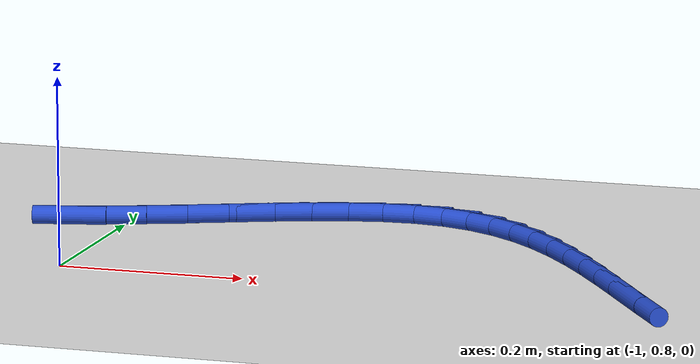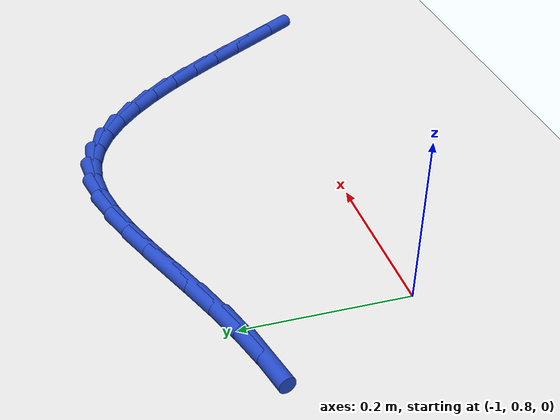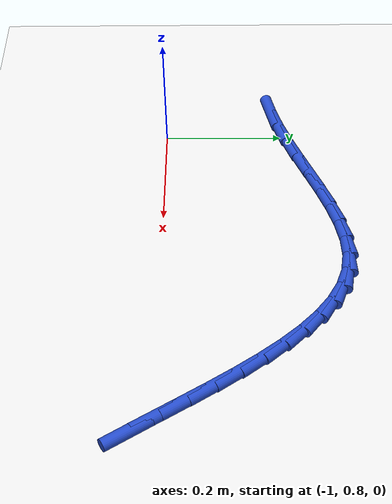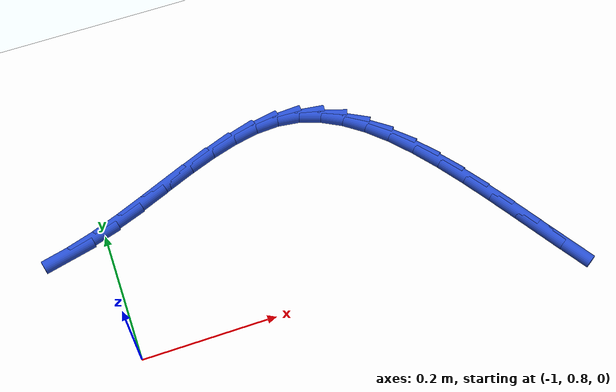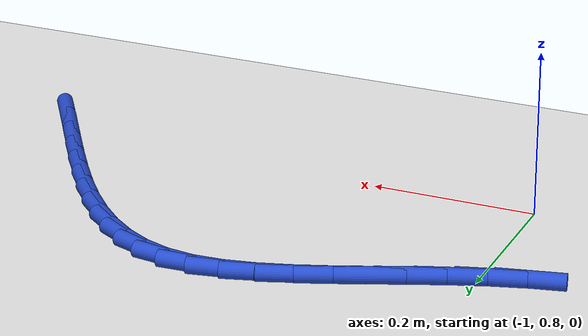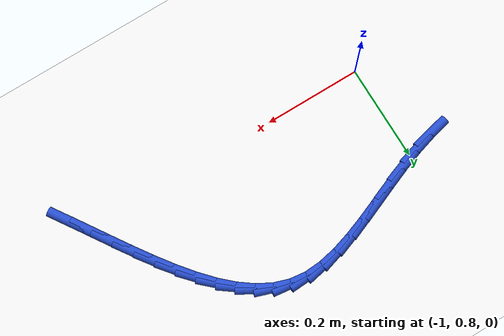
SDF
<sdf version="1.6">
 <world name="default">
  <model name="ground_plane">
   <static>1</static>
   <link name="link">
    <collision name="collision">
     <geometry><plane><normal>0 0 1</normal><size>100 100</size></plane></geometry>
     <surface><friction><ode><mu>100</mu><mu2>50</mu2></ode></friction></surface>
    </collision>
    <visual name="visual">
     <cast_shadows>0</cast_shadows>
     <geometry><plane><normal>0 0 1</normal><size>100 100</size></plane></geometry>
     <material>
      <script><uri>file://media/materials/scripts/gazebo.material</uri><name>Gazebo/WhiteGlow</name></script>
     </material>
    </visual>
   </link>
  </model>
  <model name="line">
   <link name="link_21">
    <pose>-0.36399305997773446 0.7625488888420463 0.01 0 1.57 -0.9926076525637345</pose>
    <collision name="collision">
     <geometry><cylinder><radius>0.01</radius><length>0.08</length></cylinder></geometry>
    </collision>
    <visual name="visual">
     <material>
      <script><name>Gazebo/Blue</name><uri>file://media/materials/scripts/gazebo.material</uri></script>
     </material>
     <geometry><cylinder><radius>0.01</radius><length>0.08</length></cylinder></geometry>
    </visual>
   </link>
   <link name="link_22">
    <pose>-0.3896115639665261 0.8018059892512244 0.01 0 1.57 -0.9981308526406184</pose>
    <collision name="collision">
     <geometry><cylinder><radius>0.01</radius><length>0.08</length></cylinder></geometry>
    </collision>
    <visual name="visual">
     <material>
      <script><name>Gazebo/Blue</name><uri>file://media/materials/scripts/gazebo.material</uri></script>
     </material>
     <geometry><cylinder><radius>0.01</radius><length>0.08</length></cylinder></geometry>
    </visual>
   </link>
   <link name="link_23">
    <pose>-0.4150698734536968 0.8412924255969252 0.01 0 1.57 -0.9924119475564883</pose>
    <collision name="collision">
     <geometry><cylinder><radius>0.01</radius><length>0.08</length></cylinder></geometry>
    </collision>
    <visual name="visual">
     <material>
      <script><name>Gazebo/Blue</name><uri>file://media/materials/scripts/gazebo.material</uri></script>
     </material>
     <geometry><cylinder><radius>0.01</radius><length>0.08</length></cylinder></geometry>
    </visual>
   </link>
   <link name="link_24">
    <pose>-0.44055400110518583 0.8803269178085812 0.01 0 1.57 -0.9750084611272009</pose>
    <collision name="collision">
     <geometry><cylinder><radius>0.01</radius><length>0.08</length></cylinder></geometry>
    </collision>
    <visual name="visual">
     <material>
      <script><name>Gazebo/Blue</name><uri>file://media/materials/scripts/gazebo.material</uri></script>
     </material>
     <geometry><cylinder><radius>0.01</radius><length>0.08</length></cylinder></geometry>
    </visual>
   </link>
   <link name="link_25">
    <pose>-0.466249959586933 0.9182281858156249 0.01 0 1.57 -0.9447444199484701</pose>
    <collision name="collision">
     <geometry><cylinder><radius>0.01</radius><length>0.08</length></cylinder></geometry>
    </collision>
    <visual name="visual">
     <material>
      <script><name>Gazebo/Blue</name><uri>file://media/materials/scripts/gazebo.material</uri></script>
     </material>
     <geometry><cylinder><radius>0.01</radius><length>0.08</length></cylinder></geometry>
    </visual>
   </link>
   <link name="link_26">
    <pose>-0.49234376156487747 0.9543149495474886 0.01 0 1.57 -0.8996074238196139</pose>
    <collision name="collision">
     <geometry><cylinder><radius>0.01</radius><length>0.08</length></cylinder></geometry>
    </collision>
    <visual name="visual">
     <material>
      <script><name>Gazebo/Blue</name><uri>file://media/materials/scripts/gazebo.material</uri></script>
     </material>
     <geometry><cylinder><radius>0.01</radius><length>0.08</length></cylinder></geometry>
    </visual>
   </link>
   <link name="link_27">
    <pose>-0.5190214197049591 0.9879059289336051 0.01 0 1.57 -0.8366204130642738</pose>
    <collision name="collision">
     <geometry><cylinder><radius>0.01</radius><length>0.08</length></cylinder></geometry>
    </collision>
    <visual name="visual">
     <material>
      <script><name>Gazebo/Blue</name><uri>file://media/materials/scripts/gazebo.material</uri></script>
     </material>
     <geometry><cylinder><radius>0.01</radius><length>0.08</length></cylinder></geometry>
    </visual>
   </link>
   <link name="link_28">
    <pose>-0.5464689466731174 1.0183198439034067 0.01 0 1.57 -0.7517886933547984</pose>
    <collision name="collision">
     <geometry><cylinder><radius>0.01</radius><length>0.08</length></cylinder></geometry>
    </collision>
    <visual name="visual">
     <material>
      <script><name>Gazebo/Blue</name><uri>file://media/materials/scripts/gazebo.material</uri></script>
     </material>
     <geometry><cylinder><radius>0.01</radius><length>0.08</length></cylinder></geometry>
    </visual>
   </link>
   <link name="link_29">
    <pose>-0.5748723551352918 1.0448754143863261 0.01 0 1.57 -0.6403956141349085</pose>
    <collision name="collision">
     <geometry><cylinder><radius>0.01</radius><length>0.08</length></cylinder></geometry>
    </collision>
    <visual name="visual">
     <material>
      <script><name>Gazebo/Blue</name><uri>file://media/materials/scripts/gazebo.material</uri></script>
     </material>
     <geometry><cylinder><radius>0.01</radius><length>0.08</length></cylinder></geometry>
    </visual>
   </link>
   <link name="link_30">
    <pose>-0.6044176577574218 1.0668913603117955 0.01 0 1.57 -0.49822540100895485</pose>
    <collision name="collision">
     <geometry><cylinder><radius>0.01</radius><length>0.08</length></cylinder></geometry>
    </collision>
    <visual name="visual">
     <material>
      <script><name>Gazebo/Blue</name><uri>file://media/materials/scripts/gazebo.material</uri></script>
     </material>
     <geometry><cylinder><radius>0.01</radius><length>0.08</length></cylinder></geometry>
    </visual>
   </link>
   <link name="link_31">
    <pose>-0.6352908672054474 1.0836864016092478 0.01 0 1.57 -0.3244477196425939</pose>
    <collision name="collision">
     <geometry><cylinder><radius>0.01</radius><length>0.08</length></cylinder></geometry>
    </collision>
    <visual name="visual">
     <material>
      <script><name>Gazebo/Blue</name><uri>file://media/materials/scripts/gazebo.material</uri></script>
     </material>
     <geometry><cylinder><radius>0.01</radius><length>0.08</length></cylinder></geometry>
    </visual>
   </link>
   <link name="link_32">
    <pose>-0.6676779961453074 1.0945792582081149 0.01 0 1.57 -0.1265162315229476</pose>
    <collision name="collision">
     <geometry><cylinder><radius>0.01</radius><length>0.08</length></cylinder></geometry>
    </collision>
    <visual name="visual">
     <material>
      <script><name>Gazebo/Blue</name><uri>file://media/materials/scripts/gazebo.material</uri></script>
     </material>
     <geometry><cylinder><radius>0.01</radius><length>0.08</length></cylinder></geometry>
    </visual>
   </link>
   <link name="link_33">
    <pose>-0.701759262402985 1.098914245416494 0.01 0 1.57 0.05787647576022728</pose>
    <collision name="collision">
     <geometry><cylinder><radius>0.01</radius><length>0.08</length></cylinder></geometry>
    </collision>
    <visual name="visual">
     <material>
      <script><name>Gazebo/Blue</name><uri>file://media/materials/scripts/gazebo.material</uri></script>
     </material>
     <geometry><cylinder><radius>0.01</radius><length>0.08</length></cylinder></geometry>
    </visual>
   </link>
   <link name="link_34">
    <pose>-0.7375324432569059 1.096841504921368 0.01 0 1.57 0.19563576379664416</pose>
    <collision name="collision">
     <geometry><cylinder><radius>0.01</radius><length>0.08</length></cylinder></geometry>
    </collision>
    <visual name="visual">
     <material>
      <script><name>Gazebo/Blue</name><uri>file://media/materials/scripts/gazebo.material</uri></script>
     </material>
     <geometry><cylinder><radius>0.01</radius><length>0.08</length></cylinder></geometry>
    </visual>
   </link>
   <link name="link_35">
    <pose>-0.7747804914899324 1.0894600422871439 0.01 0 1.57 0.2911868342537742</pose>
    <collision name="collision">
     <geometry><cylinder><radius>0.01</radius><length>0.08</length></cylinder></geometry>
    </collision>
    <visual name="visual">
     <material>
      <script><name>Gazebo/Blue</name><uri>file://media/materials/scripts/gazebo.material</uri></script>
     </material>
     <geometry><cylinder><radius>0.01</radius><length>0.08</length></cylinder></geometry>
    </visual>
   </link>
   <link name="link_36">
    <pose>-0.8132740340001904 1.0779233055977104 0.01 0 1.57 0.35259745705870177</pose>
    <collision name="collision">
     <geometry><cylinder><radius>0.01</radius><length>0.08</length></cylinder></geometry>
    </collision>
    <visual name="visual">
     <material>
      <script><name>Gazebo/Blue</name><uri>file://media/materials/scripts/gazebo.material</uri></script>
     </material>
     <geometry><cylinder><radius>0.01</radius><length>0.08</length></cylinder></geometry>
    </visual>
   </link>
   <link name="link_37">
    <pose>-0.8527836976858049 1.0633847429369563 0.01 0 1.57 0.3862345757084237</pose>
    <collision name="collision">
     <geometry><cylinder><radius>0.01</radius><length>0.08</length></cylinder></geometry>
    </collision>
    <visual name="visual">
     <material>
      <script><name>Gazebo/Blue</name><uri>file://media/materials/scripts/gazebo.material</uri></script>
     </material>
     <geometry><cylinder><radius>0.01</radius><length>0.08</length></cylinder></geometry>
    </visual>
   </link>
   <link name="link_38">
    <pose>-0.8930801094449011 1.0469978023887707 0.01 0 1.57 0.3960305955299181</pose>
    <collision name="collision">
     <geometry><cylinder><radius>0.01</radius><length>0.08</length></cylinder></geometry>
    </collision>
    <visual name="visual">
     <material>
      <script><name>Gazebo/Blue</name><uri>file://media/materials/scripts/gazebo.material</uri></script>
     </material>
     <geometry><cylinder><radius>0.01</radius><length>0.08</length></cylinder></geometry>
    </visual>
   </link>
   <link name="link_39">
    <pose>-0.9339338961756044 1.029915932037041 0.01 0 1.57 0.3836557096702099</pose>
    <collision name="collision">
     <geometry><cylinder><radius>0.01</radius><length>0.08</length></cylinder></geometry>
    </collision>
    <visual name="visual">
     <material>
      <script><name>Gazebo/Blue</name><uri>file://media/materials/scripts/gazebo.material</uri></script>
     </material>
     <geometry><cylinder><radius>0.01</radius><length>0.08</length></cylinder></geometry>
    </visual>
   </link>
   <link name="link_40">
    <pose>-0.9751156847760408 1.0132925799656574 0.01 0 1.57 0.34877795378042464</pose>
    <collision name="collision">
     <geometry><cylinder><radius>0.01</radius><length>0.08</length></cylinder></geometry>
    </collision>
    <visual name="visual">
     <material>
      <script><name>Gazebo/Blue</name><uri>file://media/materials/scripts/gazebo.material</uri></script>
     </material>
     <geometry><cylinder><radius>0.01</radius><length>0.08</length></cylinder></geometry>
    </visual>
   </link>
   <link name="link_41">
    <pose>-1.0163961021443346 0.9982811942585081 0.01 0 1.57 0.2921159821964271</pose>
    <collision name="collision">
     <geometry><cylinder><radius>0.01</radius><length>0.08</length></cylinder></geometry>
    </collision>
    <visual name="visual">
     <material>
      <script><name>Gazebo/Blue</name><uri>file://media/materials/scripts/gazebo.material</uri></script>
     </material>
     <geometry><cylinder><radius>0.01</radius><length>0.08</length></cylinder></geometry>
    </visual>
   </link>
   <link name="link_42">
    <pose>-1.0575710310322233 0.9858991249480141 0.01 0 1.57 0.23035135408467605</pose>
    <collision name="collision">
     <geometry><cylinder><radius>0.01</radius><length>0.08</length></cylinder></geometry>
    </collision>
    <visual name="visual">
     <material>
      <script><name>Gazebo/Blue</name><uri>file://media/materials/scripts/gazebo.material</uri></script>
     </material>
     <geometry><cylinder><radius>0.01</radius><length>0.08</length></cylinder></geometry>
    </visual>
   </link>
  </model>
 </world>
</sdf>
